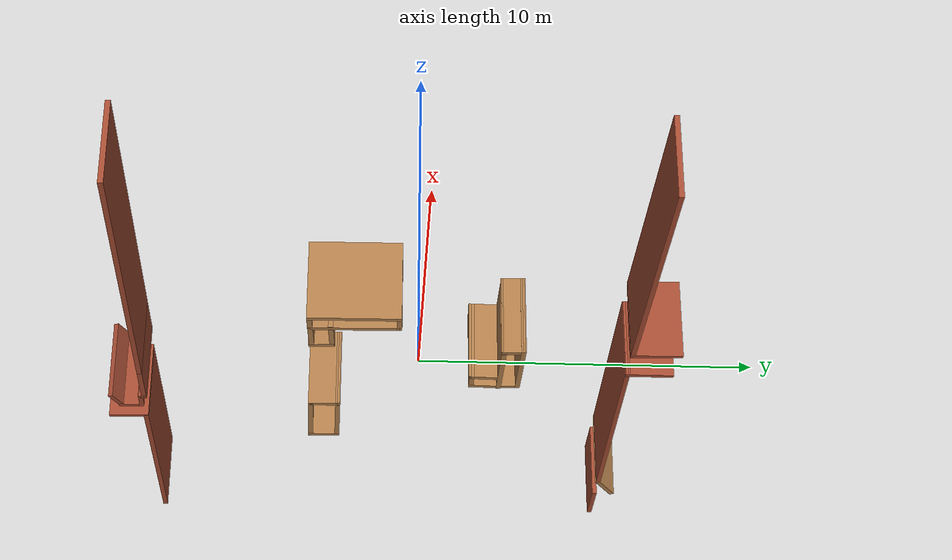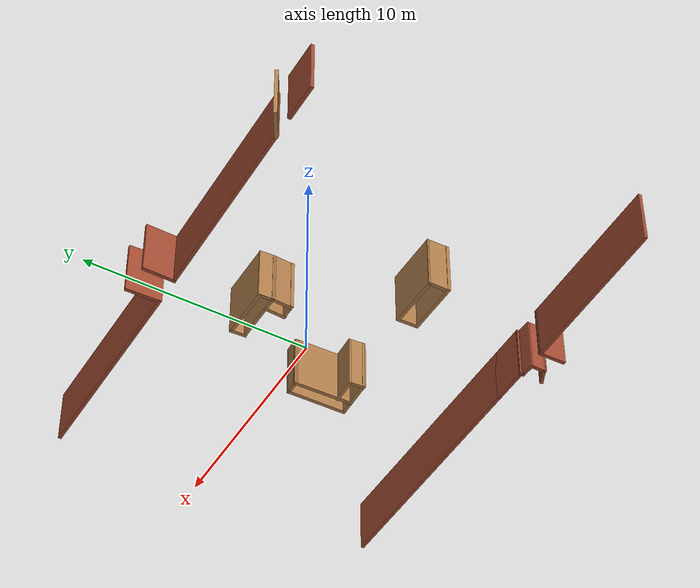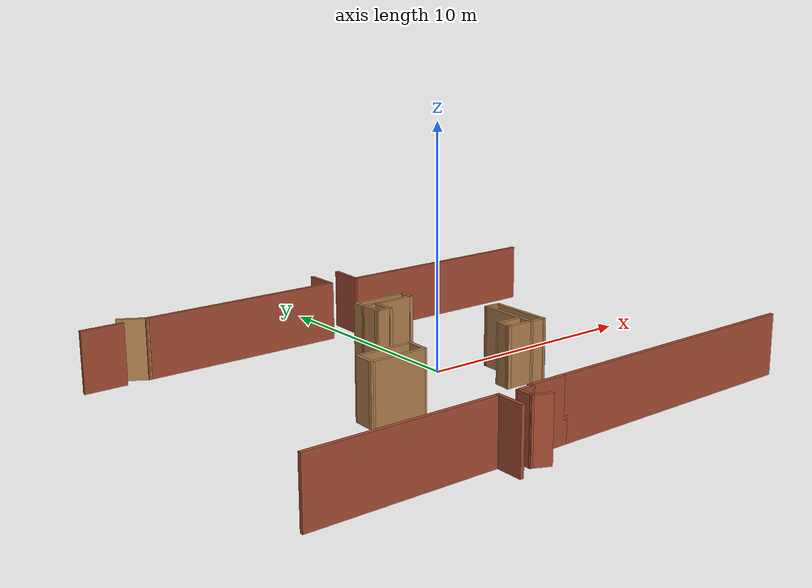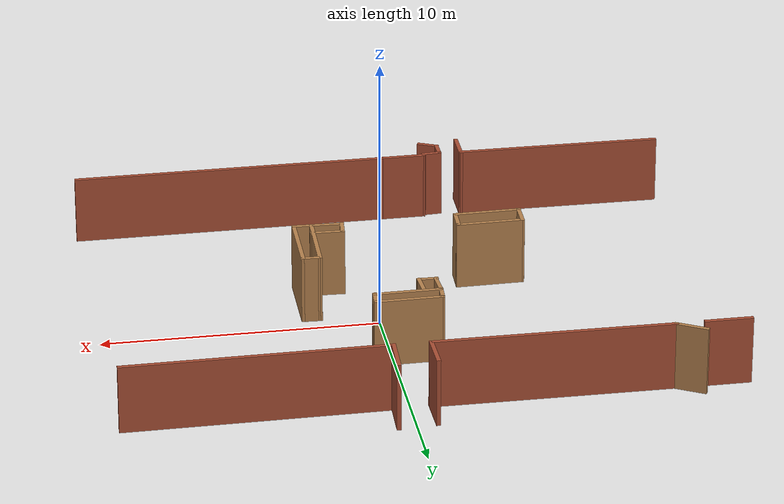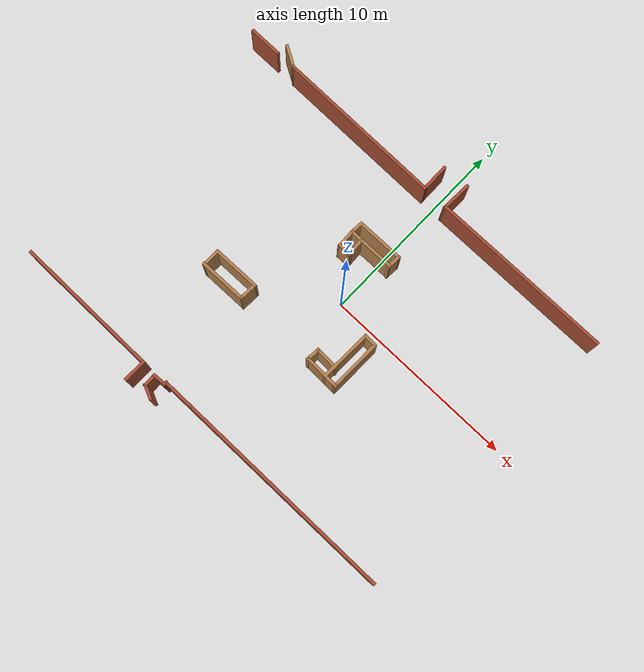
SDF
<?xml version='1.0'?>
<sdf version='1.6'>
  <model name='robotlabortory'>
    <pose frame=''>-0.984096 -0.890018 0 0 -0 0</pose>
    <link name='Wall_11'>
      <collision name='Wall_11_Collision'>
        <geometry>
          <box>
            <size>1.46965 0.15 2.5</size>
          </box>
        </geometry>
        <pose frame=''>0 0 1.25 0 -0 0</pose>
      </collision>
      <visual name='Wall_11_Visual'>
        <pose frame=''>0 0 1.25 0 -0 0</pose>
        <geometry>
          <box>
            <size>1.46965 0.15 2.5</size>
          </box>
        </geometry>
        <material>
          <script>
            <uri>file://media/materials/scripts/gazebo.material</uri>
            <name>Gazebo/Bricks</name>
          </script>
          <ambient>1 1 1 1</ambient>
        </material>
        <meta>
          <layer>0</layer>
        </meta>
      </visual>
      <pose frame=''>0.249234 7.93534 0 0 -0 1.58072</pose>
    </link>
    <link name='Wall_13'>
      <collision name='Wall_13_Collision'>
        <geometry>
          <box>
            <size>1.57994 0.15 2.5</size>
          </box>
        </geometry>
        <pose frame=''>0 0 1.25 0 -0 0</pose>
      </collision>
      <visual name='Wall_13_Visual'>
        <pose frame=''>0 0 1.25 0 -0 0</pose>
        <geometry>
          <box>
            <size>1.57994 0.15 2.5</size>
          </box>
        </geometry>
        <material>
          <script>
            <uri>file://media/materials/scripts/gazebo.material</uri>
            <name>Gazebo/Bricks</name>
          </script>
          <ambient>1 1 1 1</ambient>
        </material>
        <meta>
          <layer>0</layer>
        </meta>
      </visual>
      <pose frame=''>1.5838 7.97292 0 0 -0 1.52859</pose>
    </link>
    <link name='Wall_15'>
      <collision name='Wall_15_Collision'>
        <geometry>
          <box>
            <size>9.50026 0.15 2.5</size>
          </box>
        </geometry>
        <pose frame=''>0 0 1.25 0 -0 0</pose>
      </collision>
      <visual name='Wall_15_Visual'>
        <pose frame=''>0 0 1.25 0 -0 0</pose>
        <geometry>
          <box>
            <size>9.50026 0.15 2.5</size>
          </box>
        </geometry>
        <material>
          <script>
            <uri>file://media/materials/scripts/gazebo.material</uri>
            <name>Gazebo/Bricks</name>
          </script>
          <ambient>1 1 1 1</ambient>
        </material>
        <meta>
          <layer>0</layer>
        </meta>
      </visual>
      <pose frame=''>6.24874 7.29357 0 0 -0 0.007482</pose>
    </link>
    <link name='Wall_17'>
      <collision name='Wall_17_Collision'>
        <geometry>
          <box>
            <size>7.50533 0.15 2.5</size>
          </box>
        </geometry>
        <pose frame=''>0 0 1.25 0 -0 0</pose>
      </collision>
      <visual name='Wall_17_Visual'>
        <pose frame=''>0 0 1.25 0 -0 0</pose>
        <geometry>
          <box>
            <size>7.50533 0.15 2.5</size>
          </box>
        </geometry>
        <material>
          <script>
            <uri>file://media/materials/scripts/gazebo.material</uri>
            <name>Gazebo/Bricks</name>
          </script>
          <ambient>1 1 1 1</ambient>
        </material>
        <meta>
          <layer>0</layer>
        </meta>
      </visual>
      <pose frame=''>-7.15057 -7.58041 0 0 -0 -0.007134</pose>
    </link>
    <link name='Wall_19'>
      <collision name='Wall_19_Collision'>
        <geometry>
          <box>
            <size>1.23265 0.15 2.5</size>
          </box>
        </geometry>
        <pose frame=''>0 0 1.25 0 -0 0</pose>
      </collision>
      <visual name='Wall_19_Visual'>
        <pose frame=''>0 0 1.25 0 -0 0</pose>
        <geometry>
          <box>
            <size>1.23265 0.15 2.5</size>
          </box>
        </geometry>
        <material>
          <script>
            <uri>file://media/materials/scripts/gazebo.material</uri>
            <name>Gazebo/Bricks</name>
          </script>
          <ambient>1 1 1 1</ambient>
        </material>
        <meta>
          <layer>0</layer>
        </meta>
      </visual>
      <pose frame=''>-3.46426 -8.1479 0 0 -0 -1.58695</pose>
    </link>
    <link name='Wall_21'>
      <collision name='Wall_21_Collision'>
        <geometry>
          <box>
            <size>1.75 0.15 2.5</size>
          </box>
        </geometry>
        <pose frame=''>0 0 1.25 0 -0 0</pose>
      </collision>
      <visual name='Wall_21_Visual'>
        <pose frame=''>0 0 1.25 0 -0 0</pose>
        <geometry>
          <box>
            <size>1.75 0.15 2.5</size>
          </box>
        </geometry>
        <material>
          <script>
            <uri>file://media/materials/scripts/gazebo.material</uri>
            <name>Gazebo/Bricks</name>
          </script>
          <ambient>1 1 1 1</ambient>
        </material>
        <meta>
          <layer>0</layer>
        </meta>
      </visual>
      <pose frame=''>-1.23489 -7.55415 0 0 -0 0</pose>
    </link>
    <link name='Wall_23'>
      <collision name='Wall_23_Collision'>
        <geometry>
          <box>
            <size>0.25 0.15 2.5</size>
          </box>
        </geometry>
        <pose frame=''>0 0 1.25 0 -0 0</pose>
      </collision>
      <visual name='Wall_23_Visual'>
        <pose frame=''>0 0 1.25 0 -0 0</pose>
        <geometry>
          <box>
            <size>0.25 0.15 2.5</size>
          </box>
        </geometry>
        <material>
          <script>
            <uri>file://media/materials/scripts/gazebo.material</uri>
            <name>Gazebo/Bricks</name>
          </script>
          <ambient>1 1 1 1</ambient>
        </material>
        <meta>
          <layer>0</layer>
        </meta>
      </visual>
      <pose frame=''>-2.04783 -7.60245 0 0 -0 -1.8326</pose>
    </link>
    <link name='Wall_24'>
      <collision name='Wall_24_Collision'>
        <geometry>
          <box>
            <size>0.747949 0.15 2.5</size>
          </box>
        </geometry>
        <pose frame=''>0 0 1.25 0 -0 0</pose>
      </collision>
      <visual name='Wall_24_Visual'>
        <pose frame=''>0 0 1.25 0 -0 0</pose>
        <geometry>
          <box>
            <size>0.747949 0.15 2.5</size>
          </box>
        </geometry>
        <material>
          <script>
            <uri>file://media/materials/scripts/gazebo.material</uri>
            <name>Gazebo/Bricks</name>
          </script>
          <ambient>1 1 1 1</ambient>
        </material>
        <meta>
          <layer>0</layer>
        </meta>
      </visual>
      <pose frame=''>-2.35929 -7.66717 0 0 -0 -3.08661</pose>
    </link>
    <link name='Wall_25'>
      <collision name='Wall_25_Collision'>
        <geometry>
          <box>
            <size>0.75 0.15 2.5</size>
          </box>
        </geometry>
        <pose frame=''>0 0 1.25 0 -0 0</pose>
      </collision>
      <visual name='Wall_25_Visual'>
        <pose frame=''>0 0 1.25 0 -0 0</pose>
        <geometry>
          <box>
            <size>0.75 0.15 2.5</size>
          </box>
        </geometry>
        <material>
          <script>
            <uri>file://media/materials/scripts/gazebo.material</uri>
            <name>Gazebo/Bricks</name>
          </script>
          <ambient>1 1 1 1</ambient>
        </material>
        <meta>
          <layer>0</layer>
        </meta>
      </visual>
      <pose frame=''>-2.65781 -8.00109 0 0 -0 -1.5708</pose>
    </link>
    <link name='Wall_26'>
      <collision name='Wall_26_Collision'>
        <geometry>
          <box>
            <size>0.808478 0.15 2.5</size>
          </box>
        </geometry>
        <pose frame=''>0 0 1.25 0 -0 0</pose>
      </collision>
      <visual name='Wall_26_Visual'>
        <pose frame=''>0 0 1.25 0 -0 0</pose>
        <geometry>
          <box>
            <size>0.808478 0.15 2.5</size>
          </box>
        </geometry>
        <material>
          <script>
            <uri>file://media/materials/scripts/gazebo.material</uri>
            <name>Gazebo/Bricks</name>
          </script>
          <ambient>1 1 1 1</ambient>
        </material>
        <meta>
          <layer>0</layer>
        </meta>
      </visual>
      <pose frame=''>-2.35929 -8.42246 0 0 -0 -0.435389</pose>
    </link>
    <link name='Wall_28'>
      <collision name='Wall_28_Collision'>
        <geometry>
          <box>
            <size>11.5 0.15 2.5</size>
          </box>
        </geometry>
        <pose frame=''>0 0 1.25 0 -0 0</pose>
      </collision>
      <visual name='Wall_28_Visual'>
        <pose frame=''>0 0 1.25 0 -0 0</pose>
        <geometry>
          <box>
            <size>11.5 0.15 2.5</size>
          </box>
        </geometry>
        <material>
          <script>
            <uri>file://media/materials/scripts/gazebo.material</uri>
            <name>Gazebo/Bricks</name>
          </script>
          <ambient>1 1 1 1</ambient>
        </material>
        <meta>
          <layer>0</layer>
        </meta>
      </visual>
      <pose frame=''>5.24011 -7.55415 0 0 -0 0</pose>
    </link>
    <link name='Wall_43'>
      <collision name='Wall_43_Collision'>
        <geometry>
          <box>
            <size>0.73128 0.15 2.5</size>
          </box>
        </geometry>
        <pose frame=''>0 0 1.25 0 -0 0</pose>
      </collision>
      <visual name='Wall_43_Visual'>
        <pose frame=''>0 0 1.25 0 -0 0</pose>
        <geometry>
          <box>
            <size>0.73128 0.15 2.5</size>
          </box>
        </geometry>
        <material>
          <script>
            <uri>file://media/materials/scripts/gazebo.material</uri>
            <name>Gazebo/Wood</name>
          </script>
          <ambient>1 1 1 1</ambient>
        </material>
        <meta>
          <layer>0</layer>
        </meta>
      </visual>
      <pose frame=''>-0.746871 3.68318 0 0 -0 -1.64006</pose>
    </link>
    <link name='Wall_46'>
      <collision name='Wall_46_Collision'>
        <geometry>
          <box>
            <size>2.48023 0.15 2.5</size>
          </box>
        </geometry>
        <pose frame=''>0 0 1.25 0 -0 0</pose>
      </collision>
      <visual name='Wall_46_Visual'>
        <pose frame=''>0 0 1.25 0 -0 0</pose>
        <geometry>
          <box>
            <size>2.48023 0.15 2.5</size>
          </box>
        </geometry>
        <material>
          <script>
            <uri>file://media/materials/scripts/gazebo.material</uri>
            <name>Gazebo/Wood</name>
          </script>
          <ambient>1 1 1 1</ambient>
        </material>
        <meta>
          <layer>0</layer>
        </meta>
      </visual>
      <pose frame=''>0.458299 3.98319 0 0 -0 0.008633</pose>
    </link>
    <link name='Wall_47'>
      <collision name='Wall_47_Collision'>
        <geometry>
          <box>
            <size>0.73128 0.15 2.5</size>
          </box>
        </geometry>
        <pose frame=''>0 0 1.25 0 -0 0</pose>
      </collision>
      <visual name='Wall_47_Visual'>
        <pose frame=''>0 0 1.25 0 -0 0</pose>
        <geometry>
          <box>
            <size>0.73128 0.15 2.5</size>
          </box>
        </geometry>
        <material>
          <script>
            <uri>file://media/materials/scripts/gazebo.material</uri>
            <name>Gazebo/Wood</name>
          </script>
          <ambient>1 1 1 1</ambient>
        </material>
        <meta>
          <layer>0</layer>
        </meta>
      </visual>
      <pose frame=''>1.60313 3.68318 0 0 -0 -1.64006</pose>
    </link>
    <link name='Wall_48'>
      <collision name='Wall_48_Collision'>
        <geometry>
          <box>
            <size>2.5 0.15 2.5</size>
          </box>
        </geometry>
        <pose frame=''>0 0 1.25 0 -0 0</pose>
      </collision>
      <visual name='Wall_48_Visual'>
        <pose frame=''>0 0 1.25 0 -0 0</pose>
        <geometry>
          <box>
            <size>2.5 0.15 2.5</size>
          </box>
        </geometry>
        <material>
          <script>
            <uri>file://media/materials/scripts/gazebo.material</uri>
            <name>Gazebo/Wood</name>
          </script>
          <ambient>1 1 1 1</ambient>
        </material>
        <meta>
          <layer>0</layer>
        </meta>
      </visual>
      <pose frame=''>0.408015 3.4033 0 0 -0 -3.13303</pose>
    </link>
    <link name='Wall_50'>
      <collision name='Wall_50_Collision'>
        <geometry>
          <box>
            <size>1 0.15 2.5</size>
          </box>
        </geometry>
        <pose frame=''>0 0 1.25 0 -0 0</pose>
      </collision>
      <visual name='Wall_50_Visual'>
        <pose frame=''>0 0 1.25 0 -0 0</pose>
        <geometry>
          <box>
            <size>1 0.15 2.5</size>
          </box>
        </geometry>
        <material>
          <script>
            <uri>file://media/materials/scripts/gazebo.material</uri>
            <name>Gazebo/Wood</name>
          </script>
          <ambient>1 1 1 1</ambient>
        </material>
        <meta>
          <layer>0</layer>
        </meta>
      </visual>
      <pose frame=''>-0.746871 2.96824 0 0 -0 -1.52351</pose>
    </link>
    <link name='Wall_51'>
      <collision name='Wall_51_Collision'>
        <geometry>
          <box>
            <size>0.77044 0.15 2.5</size>
          </box>
        </geometry>
        <pose frame=''>0 0 1.25 0 -0 0</pose>
      </collision>
      <visual name='Wall_51_Visual'>
        <pose frame=''>0 0 1.25 0 -0 0</pose>
        <geometry>
          <box>
            <size>0.77044 0.15 2.5</size>
          </box>
        </geometry>
        <material>
          <script>
            <uri>file://media/materials/scripts/gazebo.material</uri>
            <name>Gazebo/Wood</name>
          </script>
          <ambient>1 1 1 1</ambient>
        </material>
        <meta>
          <layer>0</layer>
        </meta>
      </visual>
      <pose frame=''>-0.436814 2.54324 0 0 -0 0</pose>
    </link>
    <link name='Wall_52'>
      <collision name='Wall_52_Collision'>
        <geometry>
          <box>
            <size>1.00095 0.15 2.5</size>
          </box>
        </geometry>
        <pose frame=''>0 0 1.25 0 -0 0</pose>
      </collision>
      <visual name='Wall_52_Visual'>
        <pose frame=''>0 0 1.25 0 -0 0</pose>
        <geometry>
          <box>
            <size>1.00095 0.15 2.5</size>
          </box>
        </geometry>
        <material>
          <script>
            <uri>file://media/materials/scripts/gazebo.material</uri>
            <name>Gazebo/Wood</name>
          </script>
          <ambient>1 1 1 1</ambient>
        </material>
        <meta>
          <layer>0</layer>
        </meta>
      </visual>
      <pose frame=''>-0.146871 2.94813 0 0 -0 1.61809</pose>
    </link>
    <link name='Wall_55'>
      <collision name='Wall_55_Collision'>
        <geometry>
          <box>
            <size>2.75115 0.15 2.5</size>
          </box>
        </geometry>
        <pose frame=''>0 0 1.25 0 -0 0</pose>
      </collision>
      <visual name='Wall_55_Visual'>
        <pose frame=''>0 0 1.25 0 -0 0</pose>
        <geometry>
          <box>
            <size>2.75115 0.15 2.5</size>
          </box>
        </geometry>
        <material>
          <script>
            <uri>file://media/materials/scripts/gazebo.material</uri>
            <name>Gazebo/Wood</name>
          </script>
          <ambient>1 1 1 1</ambient>
        </material>
        <meta>
          <layer>0</layer>
        </meta>
      </visual>
      <pose frame=''>2.99835 -1.03888 0 0 -0 -1.60057</pose>
    </link>
    <link name='Wall_57'>
      <collision name='Wall_57_Collision'>
        <geometry>
          <box>
            <size>1.25 0.15 2.5</size>
          </box>
        </geometry>
        <pose frame=''>0 0 1.25 0 -0 0</pose>
      </collision>
      <visual name='Wall_57_Visual'>
        <pose frame=''>0 0 1.25 0 -0 0</pose>
        <geometry>
          <box>
            <size>1.25 0.15 2.5</size>
          </box>
        </geometry>
        <material>
          <script>
            <uri>file://media/materials/scripts/gazebo.material</uri>
            <name>Gazebo/Wood</name>
          </script>
          <ambient>1 1 1 1</ambient>
        </material>
        <meta>
          <layer>0</layer>
        </meta>
      </visual>
      <pose frame=''>2.46394 -1.71876 0 0 -0 3.10504</pose>
    </link>
    <link name='Wall_58'>
      <collision name='Wall_58_Collision'>
        <geometry>
          <box>
            <size>0.753027 0.15 2.5</size>
          </box>
        </geometry>
        <pose frame=''>0 0 1.25 0 -0 0</pose>
      </collision>
      <visual name='Wall_58_Visual'>
        <pose frame=''>0 0 1.25 0 -0 0</pose>
        <geometry>
          <box>
            <size>0.753027 0.15 2.5</size>
          </box>
        </geometry>
        <material>
          <script>
            <uri>file://media/materials/scripts/gazebo.material</uri>
            <name>Gazebo/Wood</name>
          </script>
          <ambient>1 1 1 1</ambient>
        </material>
        <meta>
          <layer>0</layer>
        </meta>
      </visual>
      <pose frame=''>1.88377 -2.01876 0 0 -0 -1.67103</pose>
    </link>
    <link name='Wall_59'>
      <collision name='Wall_59_Collision'>
        <geometry>
          <box>
            <size>1.25676 0.15 2.5</size>
          </box>
        </geometry>
        <pose frame=''>0 0 1.25 0 -0 0</pose>
      </collision>
      <visual name='Wall_59_Visual'>
        <pose frame=''>0 0 1.25 0 -0 0</pose>
        <geometry>
          <box>
            <size>1.25676 0.15 2.5</size>
          </box>
        </geometry>
        <material>
          <script>
            <uri>file://media/materials/scripts/gazebo.material</uri>
            <name>Gazebo/Wood</name>
          </script>
          <ambient>1 1 1 1</ambient>
        </material>
        <meta>
          <layer>0</layer>
        </meta>
      </visual>
      <pose frame=''>2.40661 -2.31876 0 0 -0 -0.036355</pose>
    </link>
    <link name='Wall_6'>
      <collision name='Wall_6_Collision'>
        <geometry>
          <box>
            <size>1.73479 0.15 2.5</size>
          </box>
        </geometry>
        <pose frame=''>0 0 1.25 0 -0 0</pose>
      </collision>
      <visual name='Wall_6_Visual'>
        <pose frame=''>0 0 1.25 0 -0 0</pose>
        <geometry>
          <box>
            <size>1.73479 0.15 2.5</size>
          </box>
        </geometry>
        <material>
          <script>
            <uri>file://media/materials/scripts/gazebo.material</uri>
            <name>Gazebo/Bricks</name>
          </script>
          <ambient>1 1 1 1</ambient>
        </material>
        <meta>
          <layer>0</layer>
        </meta>
      </visual>
      <pose frame=''>-10.1319 7.29811 0 0 -0 0</pose>
    </link>
    <link name='Wall_61'>
      <collision name='Wall_61_Collision'>
        <geometry>
          <box>
            <size>0.730235 0.15 2.5</size>
          </box>
        </geometry>
        <pose frame=''>0 0 1.25 0 -0 0</pose>
      </collision>
      <visual name='Wall_61_Visual'>
        <pose frame=''>0 0 1.25 0 -0 0</pose>
        <geometry>
          <box>
            <size>0.730235 0.15 2.5</size>
          </box>
        </geometry>
        <material>
          <script>
            <uri>file://media/materials/scripts/gazebo.material</uri>
            <name>Gazebo/Wood</name>
          </script>
          <ambient>1 1 1 1</ambient>
        </material>
        <meta>
          <layer>0</layer>
        </meta>
      </visual>
      <pose frame=''>3.32701 0.251067 0 0 -0 -0.034671</pose>
    </link>
    <link name='Wall_62'>
      <collision name='Wall_62_Collision'>
        <geometry>
          <box>
            <size>2.75031 0.15 2.5</size>
          </box>
        </geometry>
        <pose frame=''>0 0 1.25 0 -0 0</pose>
      </collision>
      <visual name='Wall_62_Visual'>
        <pose frame=''>0 0 1.25 0 -0 0</pose>
        <geometry>
          <box>
            <size>2.75031 0.15 2.5</size>
          </box>
        </geometry>
        <material>
          <script>
            <uri>file://media/materials/scripts/gazebo.material</uri>
            <name>Gazebo/Wood</name>
          </script>
          <ambient>1 1 1 1</ambient>
        </material>
        <meta>
          <layer>0</layer>
        </meta>
      </visual>
      <pose frame=''>3.61695 -1.05899 0 0 -0 -1.58627</pose>
    </link>
    <link name='Wall_63'>
      <collision name='Wall_63_Collision'>
        <geometry>
          <box>
            <size>0.747322 0.15 2.5</size>
          </box>
        </geometry>
        <pose frame=''>0 0 1.25 0 -0 0</pose>
      </collision>
      <visual name='Wall_63_Visual'>
        <pose frame=''>0 0 1.25 0 -0 0</pose>
        <geometry>
          <box>
            <size>0.747322 0.15 2.5</size>
          </box>
        </geometry>
        <material>
          <script>
            <uri>file://media/materials/scripts/gazebo.material</uri>
            <name>Gazebo/Wood</name>
          </script>
          <ambient>1 1 1 1</ambient>
        </material>
        <meta>
          <layer>0</layer>
        </meta>
      </visual>
      <pose frame=''>3.27823 -2.34893 0 0 -0 3.10791</pose>
    </link>
    <link name='Wall_65'>
      <collision name='Wall_65_Collision'>
        <geometry>
          <box>
            <size>1.00018 0.15 2.5</size>
          </box>
        </geometry>
        <pose frame=''>0 0 1.25 0 -0 0</pose>
      </collision>
      <visual name='Wall_65_Visual'>
        <pose frame=''>0 0 1.25 0 -0 0</pose>
        <geometry>
          <box>
            <size>1.00018 0.15 2.5</size>
          </box>
        </geometry>
        <material>
          <script>
            <uri>file://media/materials/scripts/gazebo.material</uri>
            <name>Gazebo/Wood</name>
          </script>
          <ambient>1 1 1 1</ambient>
        </material>
        <meta>
          <layer>0</layer>
        </meta>
      </visual>
      <pose frame=''>-4.6359 -2.00027 0 0 -0 -1.59137</pose>
    </link>
    <link name='Wall_66'>
      <collision name='Wall_66_Collision'>
        <geometry>
          <box>
            <size>2.48277 0.15 2.5</size>
          </box>
        </geometry>
        <pose frame=''>0 0 1.25 0 -0 0</pose>
      </collision>
      <visual name='Wall_66_Visual'>
        <pose frame=''>0 0 1.25 0 -0 0</pose>
        <geometry>
          <box>
            <size>2.48277 0.15 2.5</size>
          </box>
        </geometry>
        <material>
          <script>
            <uri>file://media/materials/scripts/gazebo.material</uri>
            <name>Gazebo/Wood</name>
          </script>
          <ambient>1 1 1 1</ambient>
        </material>
        <meta>
          <layer>0</layer>
        </meta>
      </visual>
      <pose frame=''>-3.49588 -2.40778 0 0 -0 0.014996</pose>
    </link>
    <link name='Wall_67'>
      <collision name='Wall_67_Collision'>
        <geometry>
          <box>
            <size>0.983245 0.15 2.5</size>
          </box>
        </geometry>
        <pose frame=''>0 0 1.25 0 -0 0</pose>
      </collision>
      <visual name='Wall_67_Visual'>
        <pose frame=''>0 0 1.25 0 -0 0</pose>
        <geometry>
          <box>
            <size>0.983245 0.15 2.5</size>
          </box>
        </geometry>
        <material>
          <script>
            <uri>file://media/materials/scripts/gazebo.material</uri>
            <name>Gazebo/Wood</name>
          </script>
          <ambient>1 1 1 1</ambient>
        </material>
        <meta>
          <layer>0</layer>
        </meta>
      </visual>
      <pose frame=''>-2.29465 -1.97403 0 0 -0 1.5288</pose>
    </link>
    <link name='Wall_68'>
      <collision name='Wall_68_Collision'>
        <geometry>
          <box>
            <size>2.5 0.15 2.5</size>
          </box>
        </geometry>
        <pose frame=''>0 0 1.25 0 -0 0</pose>
      </collision>
      <visual name='Wall_68_Visual'>
        <pose frame=''>0 0 1.25 0 -0 0</pose>
        <geometry>
          <box>
            <size>2.5 0.15 2.5</size>
          </box>
        </geometry>
        <material>
          <script>
            <uri>file://media/materials/scripts/gazebo.material</uri>
            <name>Gazebo/Wood</name>
          </script>
          <ambient>1 1 1 1</ambient>
        </material>
        <meta>
          <layer>0</layer>
        </meta>
      </visual>
      <pose frame=''>-3.45215 -1.55778 0 0 -0 -3.12671</pose>
    </link>
    <link name='Wall_8'>
      <collision name='Wall_8_Collision'>
        <geometry>
          <box>
            <size>1.24802 0.15 2.5</size>
          </box>
        </geometry>
        <pose frame=''>0 0 1.25 0 -0 0</pose>
      </collision>
      <visual name='Wall_8_Visual'>
        <pose frame=''>0 0 1.25 0 -0 0</pose>
        <geometry>
          <box>
            <size>1.24802 0.15 2.5</size>
          </box>
        </geometry>
        <material>
          <script>
            <uri>file://media/materials/scripts/gazebo.material</uri>
            <name>Gazebo/Wood</name>
          </script>
          <ambient>1 1 1 1</ambient>
        </material>
        <meta>
          <layer>0</layer>
        </meta>
      </visual>
      <pose frame=''>-8.75394 7.58553 0 0 -0 -0.524638</pose>
    </link>
    <link name='Wall_9'>
      <collision name='Wall_9_Collision'>
        <geometry>
          <box>
            <size>8.70206 0.15 2.5</size>
          </box>
        </geometry>
        <pose frame=''>0 0 1.25 0 -0 0</pose>
      </collision>
      <visual name='Wall_9_Visual'>
        <pose frame=''>0 0 1.25 0 -0 0</pose>
        <geometry>
          <box>
            <size>8.70206 0.15 2.5</size>
          </box>
        </geometry>
        <material>
          <script>
            <uri>file://media/materials/scripts/gazebo.material</uri>
            <name>Gazebo/Bricks</name>
          </script>
          <ambient>1 1 1 1</ambient>
        </material>
        <meta>
          <layer>0</layer>
        </meta>
      </visual>
      <pose frame=''>-4.02024 7.28429 0 0 -0 -0.006135</pose>
    </link>
    <static>1</static>
  </model>
</sdf>
